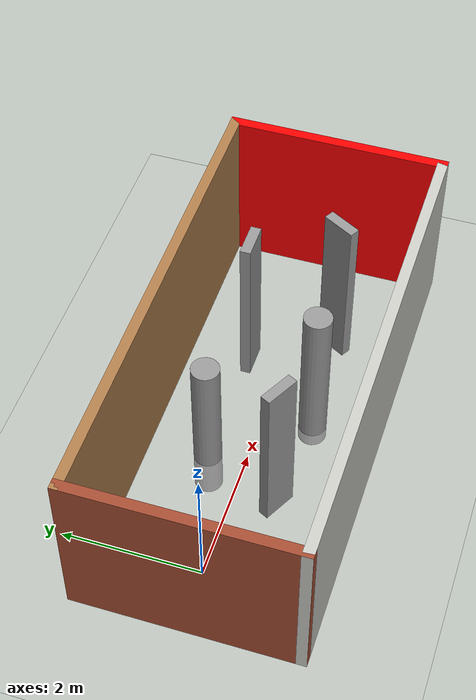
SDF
<sdf version="1.6">
 <world name="default">
  <light name="sun" type="directional">
   <pose>0 0 10 0 -0 0</pose>
   <diffuse>0.8 0.8 0.8 1</diffuse>
   <specular>0.2 0.2 0.2 1</specular>
   <attenuation>
    <range>1000</range>
    <constant>0.9</constant>
    <linear>0.01</linear>
    <quadratic>0.001</quadratic>
   </attenuation>
   <direction>-0.5 0.1 -0.9</direction>
  </light>
  <plugin name="ros_interface_plugin" filename="librotors_gazebo_ros_interface_plugin.so"/>
  <model name="target">
   <pose>0.034691 1.22927 0.913074 0 -0 0</pose>
   <static>0</static>
   <link name="link">
    <gravity>0</gravity>
    <collision name="collision">
     <geometry><sphere><radius>0.051</radius></sphere></geometry>
     <surface><contact><collide_without_contact>1</collide_without_contact></contact></surface>
    </collision>
    <inertial>
     <inertia><ixx>1</ixx><ixy>0</ixy><ixz>0</ixz><iyy>1</iyy><iyz>0</iyz><izz>1</izz></inertia>
     <mass>1</mass>
    </inertial>
   </link>
  </model>
  <model name="ground_plane">
   <static>1</static>
   <link name="link">
    <collision name="collision">
     <geometry><plane><normal>0 0 1</normal><size>100 100</size></plane></geometry>
     <surface><friction><ode><mu>100</mu><mu2>50</mu2></ode></friction></surface>
    </collision>
    <visual name="visual">
     <cast_shadows>0</cast_shadows>
     <geometry><plane><normal>0 0 1</normal><size>100 100</size></plane></geometry>
     <material>
      <script><uri>file://media/materials/scripts/gazebo.material</uri><name>Gazebo/Grey</name></script>
     </material>
    </visual>
   </link>
  </model>
  <gravity>0 0 -9.8</gravity>
  <magnetic_field>6e-06 2.3e-05 -4.2e-05</magnetic_field>
  <atmosphere type="adiabatic"/>
  <physics name="default_physics" default="0" type="ode">
   <max_step_size>0.001</max_step_size>
   <real_time_factor>1</real_time_factor>
   <real_time_update_rate>1000</real_time_update_rate>
  </physics>
  <scene><ambient>0.4 0.4 0.4 1</ambient><background>0.7 0.7 0.7 1</background><shadows>1</shadows></scene>
  <spherical_coordinates>
   <surface_model>EARTH_WGS84</surface_model>
   <latitude_deg>0</latitude_deg>
   <longitude_deg>0</longitude_deg>
   <elevation>0</elevation>
   <heading_deg>0</heading_deg>
  </spherical_coordinates>
  <model name="rectangle">
   <link name="Floor_0">
    <pose>-0.025242 0.002421 2.5 0 -0 0</pose>
    <inertial>
     <mass>1</mass>
     <inertia><ixx>1</ixx><ixy>0</ixy><ixz>0</ixz><iyy>1</iyy><iyz>0</iyz><izz>1</izz></inertia>
    </inertial>
    <visual name="Floor_0_Visual">
     <pose>0 0 0.05 0 -0 0</pose>
     <geometry><box><size>7 3.25 0.1</size></box></geometry>
     <material>
      <script><uri>file://media/materials/scripts/gazebo.material</uri><name>Gazebo/Grey</name></script>
      <ambient>1 1 1 1</ambient>
      <shader type="pixel"><normal_map>__default__</normal_map></shader>
      <diffuse>0.7 0.7 0.7 1</diffuse>
      <specular>0.01 0.01 0.01 1</specular>
      <emissive>0 0 0 1</emissive>
     </material>
     <meta><layer>1</layer></meta>
     <transparency>1</transparency>
    </visual>
    <collision name="Floor_0_Collision">
     <pose>0 0 0.05 0 -0 0</pose>
     <geometry><box><size>7 3.25 0.1</size></box></geometry>
     <surface>
      <friction>
       <ode><mu>1</mu><mu2>1</mu2><fdir1>0 0 0</fdir1><slip1>0</slip1><slip2>0</slip2></ode>
       <torsional>
        <coefficient>1</coefficient>
        <patch_radius>0</patch_radius>
        <surface_radius>0</surface_radius>
        <use_patch_radius>1</use_patch_radius>
        <ode><slip>0</slip></ode>
       </torsional>
      </friction>
      <bounce><restitution_coefficient>0</restitution_coefficient><threshold>1e+06</threshold></bounce>
      <contact>
       <collide_without_contact>0</collide_without_contact>
       <collide_without_contact_bitmask>1</collide_without_contact_bitmask>
       <collide_bitmask>1</collide_bitmask>
       <ode>
        <soft_cfm>0</soft_cfm>
        <soft_erp>0.2</soft_erp>
        <kp>1e+13</kp>
        <kd>1</kd>
        <max_vel>0.01</max_vel>
        <min_depth>0</min_depth>
       </ode>
       <bullet>
        <split_impulse>1</split_impulse>
        <split_impulse_penetration_threshold>-0.01</split_impulse_penetration_threshold>
        <soft_cfm>0</soft_cfm>
        <soft_erp>0.2</soft_erp>
        <kp>1e+13</kp>
        <kd>1</kd>
       </bullet>
      </contact>
     </surface>
    </collision>
   </link>
   <link name="Wall_0">
    <pose>0 1.55 0 0 -0 0</pose>
    <visual name="Wall_0_Visual">
     <pose>0 0 1.25 0 -0 0</pose>
     <geometry><box><size>7 0.15 2.5</size></box></geometry>
     <material>
      <script><uri>file://media/materials/scripts/gazebo.material</uri><name>Gazebo/Wood</name></script>
      <ambient>1 1 1 1</ambient>
      <shader type="pixel"/>
      <diffuse>1 1 1 1</diffuse>
      <specular>0.2 0.2 0.2 1</specular>
      <emissive>0 0 0 1</emissive>
     </material>
     <meta><layer>0</layer></meta>
    </visual>
    <collision name="Wall_0_Collision">
     <pose>0 0 1.25 0 -0 0</pose>
     <geometry><box><size>7 0.15 2.5</size></box></geometry>
     <surface>
      <friction>
       <ode><mu>1</mu><mu2>1</mu2><fdir1>0 0 0</fdir1><slip1>0</slip1><slip2>0</slip2></ode>
       <torsional>
        <coefficient>1</coefficient>
        <patch_radius>0</patch_radius>
        <surface_radius>0</surface_radius>
        <use_patch_radius>1</use_patch_radius>
        <ode><slip>0</slip></ode>
       </torsional>
      </friction>
      <bounce><restitution_coefficient>0</restitution_coefficient><threshold>1e+06</threshold></bounce>
      <contact>
       <collide_without_contact>0</collide_without_contact>
       <collide_without_contact_bitmask>1</collide_without_contact_bitmask>
       <collide_bitmask>1</collide_bitmask>
       <ode>
        <soft_cfm>0</soft_cfm>
        <soft_erp>0.2</soft_erp>
        <kp>1e+13</kp>
        <kd>1</kd>
        <max_vel>0.01</max_vel>
        <min_depth>0</min_depth>
       </ode>
       <bullet>
        <split_impulse>1</split_impulse>
        <split_impulse_penetration_threshold>-0.01</split_impulse_penetration_threshold>
        <soft_cfm>0</soft_cfm>
        <soft_erp>0.2</soft_erp>
        <kp>1e+13</kp>
        <kd>1</kd>
       </bullet>
      </contact>
     </surface>
    </collision>
   </link>
   <link name="Wall_1">
    <pose>3.425 0 0 0 0 -1.5708</pose>
    <visual name="Wall_1_Visual">
     <pose>0 0 1.25 0 -0 0</pose>
     <geometry><box><size>3.25 0.15 2.5</size></box></geometry>
     <material>
      <script><uri>file://media/materials/scripts/gazebo.material</uri><name>Gazebo/Grey</name></script>
      <ambient>1 0 0 1</ambient>
      <shader type="pixel"/>
      <diffuse>0.7 0.7 0.7 1</diffuse>
      <specular>0.01 0.01 0.01 1</specular>
      <emissive>0 0 0 1</emissive>
     </material>
     <meta><layer>0</layer></meta>
    </visual>
    <collision name="Wall_1_Collision">
     <pose>0 0 1.25 0 -0 0</pose>
     <geometry><box><size>3.25 0.15 2.5</size></box></geometry>
     <surface>
      <friction>
       <ode><mu>1</mu><mu2>1</mu2><fdir1>0 0 0</fdir1><slip1>0</slip1><slip2>0</slip2></ode>
       <torsional>
        <coefficient>1</coefficient>
        <patch_radius>0</patch_radius>
        <surface_radius>0</surface_radius>
        <use_patch_radius>1</use_patch_radius>
        <ode><slip>0</slip></ode>
       </torsional>
      </friction>
      <bounce><restitution_coefficient>0</restitution_coefficient><threshold>1e+06</threshold></bounce>
      <contact>
       <collide_without_contact>0</collide_without_contact>
       <collide_without_contact_bitmask>1</collide_without_contact_bitmask>
       <collide_bitmask>1</collide_bitmask>
       <ode>
        <soft_cfm>0</soft_cfm>
        <soft_erp>0.2</soft_erp>
        <kp>1e+13</kp>
        <kd>1</kd>
        <max_vel>0.01</max_vel>
        <min_depth>0</min_depth>
       </ode>
       <bullet>
        <split_impulse>1</split_impulse>
        <split_impulse_penetration_threshold>-0.01</split_impulse_penetration_threshold>
        <soft_cfm>0</soft_cfm>
        <soft_erp>0.2</soft_erp>
        <kp>1e+13</kp>
        <kd>1</kd>
       </bullet>
      </contact>
     </surface>
    </collision>
   </link>
   <link name="Wall_2">
    <pose>0 -1.55 0 0 -0 3.14159</pose>
    <visual name="Wall_2_Visual">
     <pose>0 0 1.25 0 -0 0</pose>
     <geometry><box><size>7 0.15 2.5</size></box></geometry>
     <material>
      <script><uri>file://media/materials/scripts/gazebo.material</uri><name>Gazebo/CeilingTiled</name></script>
      <ambient>1 1 1 1</ambient>
      <shader type="pixel"/>
      <diffuse>1 1 1 1</diffuse>
      <specular>0 0 0 1</specular>
      <emissive>0 0 0 1</emissive>
     </material>
     <meta><layer>0</layer></meta>
    </visual>
    <collision name="Wall_2_Collision">
     <pose>0 0 1.25 0 -0 0</pose>
     <geometry><box><size>7 0.15 2.5</size></box></geometry>
     <surface>
      <friction>
       <ode><mu>1</mu><mu2>1</mu2><fdir1>0 0 0</fdir1><slip1>0</slip1><slip2>0</slip2></ode>
       <torsional>
        <coefficient>1</coefficient>
        <patch_radius>0</patch_radius>
        <surface_radius>0</surface_radius>
        <use_patch_radius>1</use_patch_radius>
        <ode><slip>0</slip></ode>
       </torsional>
      </friction>
      <bounce><restitution_coefficient>0</restitution_coefficient><threshold>1e+06</threshold></bounce>
      <contact>
       <collide_without_contact>0</collide_without_contact>
       <collide_without_contact_bitmask>1</collide_without_contact_bitmask>
       <collide_bitmask>1</collide_bitmask>
       <ode>
        <soft_cfm>0</soft_cfm>
        <soft_erp>0.2</soft_erp>
        <kp>1e+13</kp>
        <kd>1</kd>
        <max_vel>0.01</max_vel>
        <min_depth>0</min_depth>
       </ode>
       <bullet>
        <split_impulse>1</split_impulse>
        <split_impulse_penetration_threshold>-0.01</split_impulse_penetration_threshold>
        <soft_cfm>0</soft_cfm>
        <soft_erp>0.2</soft_erp>
        <kp>1e+13</kp>
        <kd>1</kd>
       </bullet>
      </contact>
     </surface>
    </collision>
   </link>
   <link name="Wall_3">
    <pose>-3.425 0 0 0 -0 1.5708</pose>
    <visual name="Wall_3_Visual">
     <pose>0 0 1.25 0 -0 0</pose>
     <geometry><box><size>3.25 0.15 2.5</size></box></geometry>
     <material>
      <script><uri>file://media/materials/scripts/gazebo.material</uri><name>Gazebo/Bricks</name></script>
      <ambient>1 1 1 1</ambient>
      <shader type="pixel"/>
      <diffuse>1 1 1 1</diffuse>
      <specular>0.2 0.2 0.2 1</specular>
      <emissive>0 0 0 1</emissive>
     </material>
     <meta><layer>0</layer></meta>
    </visual>
    <collision name="Wall_3_Collision">
     <pose>0 0 1.25 0 -0 0</pose>
     <geometry><box><size>3.25 0.15 2.5</size></box></geometry>
     <surface>
      <friction>
       <ode><mu>1</mu><mu2>1</mu2><fdir1>0 0 0</fdir1><slip1>0</slip1><slip2>0</slip2></ode>
       <torsional>
        <coefficient>1</coefficient>
        <patch_radius>0</patch_radius>
        <surface_radius>0</surface_radius>
        <use_patch_radius>1</use_patch_radius>
        <ode><slip>0</slip></ode>
       </torsional>
      </friction>
      <bounce><restitution_coefficient>0</restitution_coefficient><threshold>1e+06</threshold></bounce>
      <contact>
       <collide_without_contact>0</collide_without_contact>
       <collide_without_contact_bitmask>1</collide_without_contact_bitmask>
       <collide_bitmask>1</collide_bitmask>
       <ode>
        <soft_cfm>0</soft_cfm>
        <soft_erp>0.2</soft_erp>
        <kp>1e+13</kp>
        <kd>1</kd>
        <max_vel>0.01</max_vel>
        <min_depth>0</min_depth>
       </ode>
       <bullet>
        <split_impulse>1</split_impulse>
        <split_impulse_penetration_threshold>-0.01</split_impulse_penetration_threshold>
        <soft_cfm>0</soft_cfm>
        <soft_erp>0.2</soft_erp>
        <kp>1e+13</kp>
        <kd>1</kd>
       </bullet>
      </contact>
     </surface>
    </collision>
   </link>
   <model name="unit_cylinder">
    <static>1</static>
    <link name="link">
     <inertial>
      <mass>1000</mass>
      <inertia><ixx>0.145833</ixx><ixy>0</ixy><ixz>0</ixz><iyy>0.145833</iyy><iyz>0</iyz><izz>0.125</izz></inertia>
     </inertial>
     <visual name="visual">
      <geometry><cylinder><radius>0.2</radius><length>2.5</length></cylinder></geometry>
      <material>
       <script><name>Gazebo/Grey</name><uri>file://media/materials/scripts/gazebo.material</uri></script>
       <shader type="pixel"><normal_map>__default__</normal_map></shader>
       <ambient>0.3 0.3 0.3 1</ambient>
       <diffuse>0.7 0.7 0.7 1</diffuse>
       <specular>0.01 0.01 0.01 1</specular>
       <emissive>0 0 0 1</emissive>
      </material>
     </visual>
     <collision name="collision">
      <geometry><cylinder><radius>0.2</radius><length>2.5</length></cylinder></geometry>
      <surface>
       <friction>
        <ode><mu>1</mu><mu2>1</mu2><fdir1>0 0 0</fdir1><slip1>0</slip1><slip2>0</slip2></ode>
        <torsional>
         <coefficient>1</coefficient>
         <patch_radius>0</patch_radius>
         <surface_radius>0</surface_radius>
         <use_patch_radius>1</use_patch_radius>
         <ode><slip>0</slip></ode>
        </torsional>
       </friction>
       <bounce><restitution_coefficient>0</restitution_coefficient><threshold>1e+06</threshold></bounce>
       <contact>
        <collide_without_contact>0</collide_without_contact>
        <collide_without_contact_bitmask>1</collide_without_contact_bitmask>
        <collide_bitmask>1</collide_bitmask>
        <ode>
         <soft_cfm>0</soft_cfm>
         <soft_erp>0.2</soft_erp>
         <kp>1e+13</kp>
         <kd>1</kd>
         <max_vel>0.01</max_vel>
         <min_depth>0</min_depth>
        </ode>
        <bullet>
         <split_impulse>1</split_impulse>
         <split_impulse_penetration_threshold>-0.01</split_impulse_penetration_threshold>
         <soft_cfm>0</soft_cfm>
         <soft_erp>0.2</soft_erp>
         <kp>1e+13</kp>
         <kd>1</kd>
        </bullet>
       </contact>
      </surface>
     </collision>
    </link>
    <static>0</static>
    <pose>-0.714118 0.631942 0.624728 0 -0 0</pose>
   </model>
   <model name="unit_cylinder_0">
    <static>1</static>
    <link name="link">
     <inertial>
      <mass>1000</mass>
      <inertia><ixx>0.145833</ixx><ixy>0</ixy><ixz>0</ixz><iyy>0.145833</iyy><iyz>0</iyz><izz>0.125</izz></inertia>
     </inertial>
     <visual name="visual">
      <geometry><cylinder><radius>0.2</radius><length>2.5</length></cylinder></geometry>
      <material>
       <script><name>Gazebo/Grey</name><uri>file://media/materials/scripts/gazebo.material</uri></script>
       <shader type="pixel"><normal_map>__default__</normal_map></shader>
       <ambient>0.3 0.3 0.3 1</ambient>
       <diffuse>0.7 0.7 0.7 1</diffuse>
       <specular>0.01 0.01 0.01 1</specular>
       <emissive>0 0 0 1</emissive>
      </material>
     </visual>
     <collision name="collision">
      <geometry><cylinder><radius>0.2</radius><length>2.5</length></cylinder></geometry>
      <surface>
       <friction>
        <ode><mu>1</mu><mu2>1</mu2><fdir1>0 0 0</fdir1><slip1>0</slip1><slip2>0</slip2></ode>
        <torsional>
         <coefficient>1</coefficient>
         <patch_radius>0</patch_radius>
         <surface_radius>0</surface_radius>
         <use_patch_radius>1</use_patch_radius>
         <ode><slip>0</slip></ode>
        </torsional>
       </friction>
       <bounce><restitution_coefficient>0</restitution_coefficient><threshold>1e+06</threshold></bounce>
       <contact>
        <collide_without_contact>0</collide_without_contact>
        <collide_without_contact_bitmask>1</collide_without_contact_bitmask>
        <collide_bitmask>1</collide_bitmask>
        <ode>
         <soft_cfm>0</soft_cfm>
         <soft_erp>0.2</soft_erp>
         <kp>1e+13</kp>
         <kd>1</kd>
         <max_vel>0.01</max_vel>
         <min_depth>0</min_depth>
        </ode>
        <bullet>
         <split_impulse>1</split_impulse>
         <split_impulse_penetration_threshold>-0.01</split_impulse_penetration_threshold>
         <soft_cfm>0</soft_cfm>
         <soft_erp>0.2</soft_erp>
         <kp>1e+13</kp>
         <kd>1</kd>
        </bullet>
       </contact>
      </surface>
     </collision>
    </link>
    <static>0</static>
    <pose>0.246135 -0.621575 1.0305 0 -0 0</pose>
   </model>
   <model name="wal.5">
    <static>1</static>
    <pose>1.14131 0.594105 0 0 -0 0</pose>
    <link name="Wall_13">
     <collision name="Wall_13_Collision">
      <geometry><box><size>0.5 0.15 2.5</size></box></geometry>
      <pose>0 0 1.25 0 -0 0</pose>
     </collision>
     <visual name="Wall_13_Visual">
      <pose>0 0 1.25 0 -0 0</pose>
      <geometry><box><size>0.5 0.15 2.5</size></box></geometry>
      <material>
       <script><uri>file://media/materials/scripts/gazebo.material</uri><name>Gazebo/Grey</name></script>
       <ambient>1 1 1 1</ambient>
      </material>
      <meta><layer>0</layer></meta>
     </visual>
    </link>
    <static>1</static>
   </model>
   <model name="wal.5_0">
    <static>1</static>
    <pose>1.82409 -0.501349 0 0 -0 1.05606</pose>
    <link name="Wall_13">
     <collision name="Wall_13_Collision">
      <geometry><box><size>0.5 0.15 2.5</size></box></geometry>
      <pose>0 0 1.25 0 -0 0</pose>
     </collision>
     <visual name="Wall_13_Visual">
      <pose>0 0 1.25 0 -0 0</pose>
      <geometry><box><size>0.5 0.15 2.5</size></box></geometry>
      <material>
       <script><uri>file://media/materials/scripts/gazebo.material</uri><name>Gazebo/Grey</name></script>
       <ambient>1 1 1 1</ambient>
      </material>
      <meta><layer>0</layer></meta>
     </visual>
    </link>
    <static>1</static>
   </model>
   <model name="wal.5_1">
    <static>1</static>
    <pose>-1.23686 -0.52787 0 0 0 -0.475164</pose>
    <link name="Wall_13">
     <collision name="Wall_13_Collision">
      <geometry><box><size>0.5 0.15 2.5</size></box></geometry>
      <pose>0 0 1.25 0 -0 0</pose>
     </collision>
     <visual name="Wall_13_Visual">
      <pose>0 0 1.25 0 -0 0</pose>
      <geometry><box><size>0.5 0.15 2.5</size></box></geometry>
      <material>
       <script><uri>file://media/materials/scripts/gazebo.material</uri><name>Gazebo/Grey</name></script>
       <ambient>1 1 1 1</ambient>
      </material>
      <meta><layer>0</layer></meta>
     </visual>
    </link>
    <static>1</static>
   </model>
   <static>1</static>
   <pose>2.58332 -0.082011 0 0 -0 0</pose>
  </model>
 </world>
</sdf>
